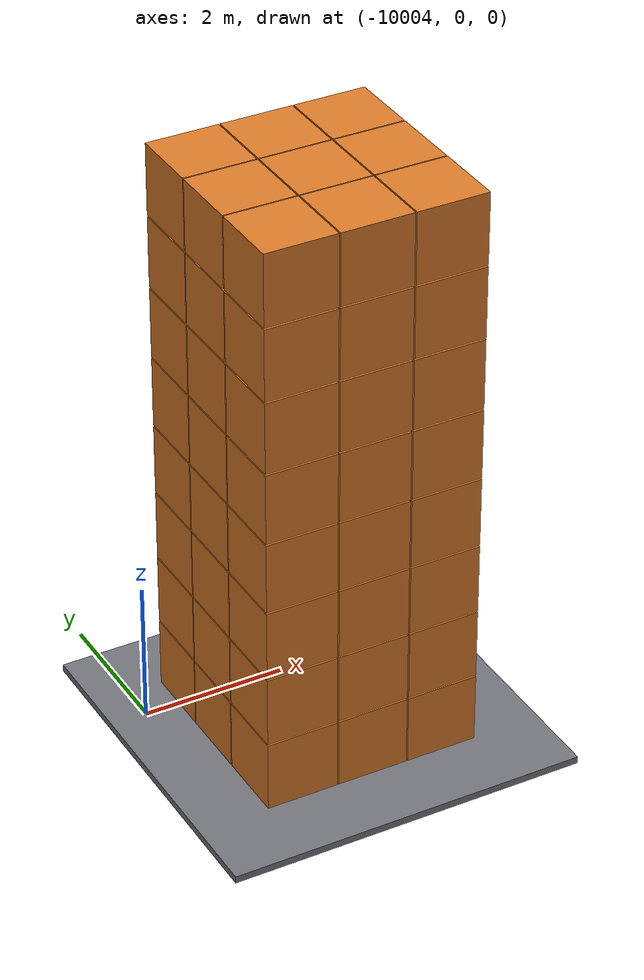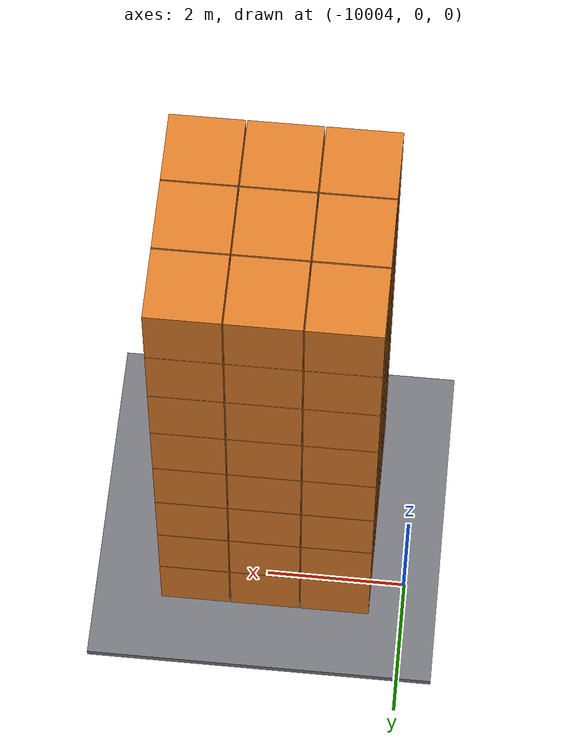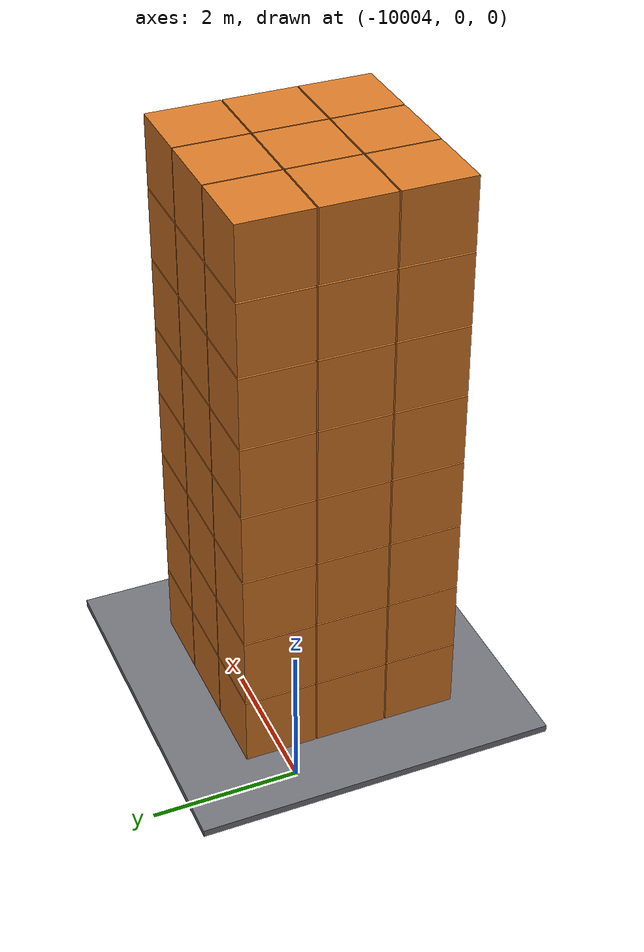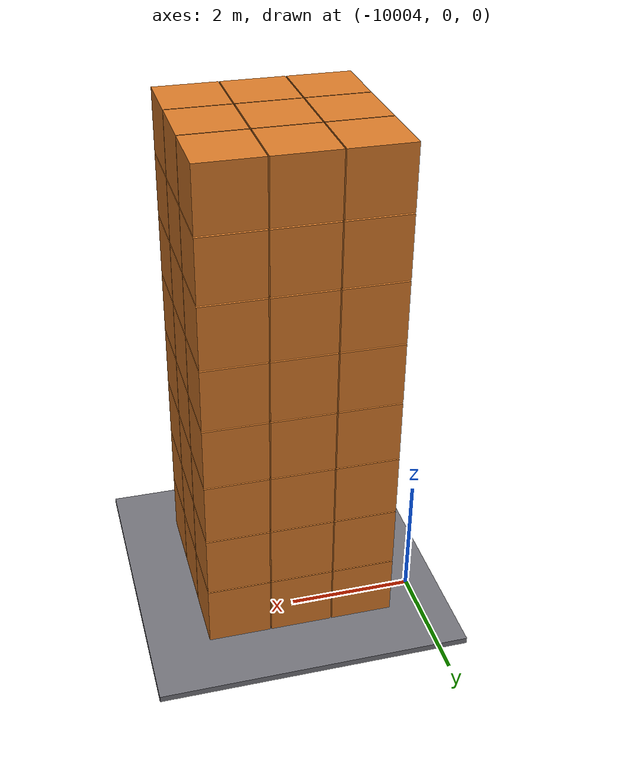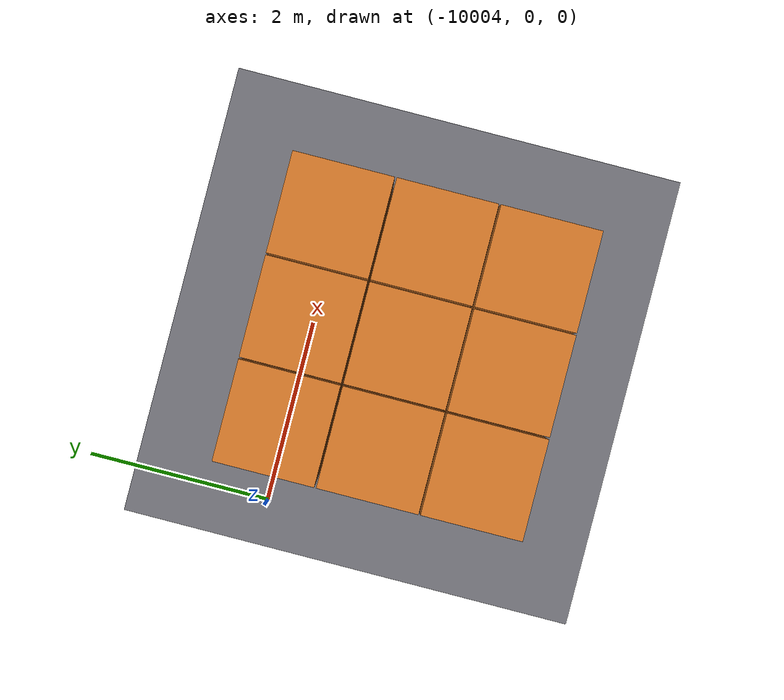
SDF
<sdf version="1.9">
 <world name="baylands_thunder">
  <physics type="ode">
   <max_step_size>0.004</max_step_size>
   <real_time_factor>1.0</real_time_factor>
   <real_time_update_rate>250</real_time_update_rate>
  </physics>
  <gravity>0 0 -9.8</gravity>
  <magnetic_field>6e-06 2.3e-05 -4.2e-05</magnetic_field>
  <atmosphere type="adiabatic"/>
  <scene>
   <ambient>0.8 0.5 1</ambient>
   <grid>false</grid>
   <sky><clouds>true</clouds></sky>
   <shadows>1</shadows>
  </scene>
  <light name="sunUTC" type="directional">
   <pose>0 0 500 0 -0 0</pose>
   <cast_shadows>false</cast_shadows>
   <intensity>1</intensity>
   <direction>0.001 0.625 -0.78</direction>
   <diffuse>0.904 0.904 0.904 1</diffuse>
   <specular>0.271 0.271 0.271 1</specular>
   <attenuation><range>2000</range><linear>0</linear><constant>1</constant><quadratic>0</quadratic></attenuation>
  </light>
  <model name="box_stack_pad">
   <static>true</static>
   <pose>-10002.000 -1 -0.05 0 0 0</pose>
   <link name="link">
    <collision name="collision"><geometry><box><size>5 5 0.1</size></box></geometry></collision>
    <visual name="visual">
     <geometry><box><size>5 5 0.1</size></box></geometry>
     <material><ambient>0.35 0.35 0.38 1</ambient><diffuse>0.45 0.45 0.48 1</diffuse></material>
    </visual>
   </link>
  </model>
  <include>
   <uri>model://collapse_box</uri>
   <name>box_0_0_0</name>
   <pose>-10003.020 -2.020 0.510 0 0 0</pose>
  </include>
  <include>
   <uri>model://collapse_box</uri>
   <name>box_1_0_0</name>
   <pose>-10002.000 -2.020 0.510 0 0 0</pose>
  </include>
  <include>
   <uri>model://collapse_box</uri>
   <name>box_2_0_0</name>
   <pose>-10000.980 -2.020 0.510 0 0 0</pose>
  </include>
  <include>
   <uri>model://collapse_box</uri>
   <name>box_0_1_0</name>
   <pose>-10003.020 -1.000 0.510 0 0 0</pose>
  </include>
  <include>
   <uri>model://collapse_box</uri>
   <name>box_1_1_0</name>
   <pose>-10002.000 -1.000 0.510 0 0 0</pose>
  </include>
  <include>
   <uri>model://collapse_box</uri>
   <name>box_2_1_0</name>
   <pose>-10000.980 -1.000 0.510 0 0 0</pose>
  </include>
  <include>
   <uri>model://collapse_box</uri>
   <name>box_0_2_0</name>
   <pose>-10003.020 0.020 0.510 0 0 0</pose>
  </include>
  <include>
   <uri>model://collapse_box</uri>
   <name>box_1_2_0</name>
   <pose>-10002.000 0.020 0.510 0 0 0</pose>
  </include>
  <include>
   <uri>model://collapse_box</uri>
   <name>box_2_2_0</name>
   <pose>-10000.980 0.020 0.510 0 0 0</pose>
  </include>
  <include>
   <uri>model://collapse_box</uri>
   <name>box_0_0_1</name>
   <pose>-10003.020 -2.020 1.530 0 0 0</pose>
  </include>
  <include>
   <uri>model://collapse_box</uri>
   <name>box_1_0_1</name>
   <pose>-10002.000 -2.020 1.530 0 0 0</pose>
  </include>
  <include>
   <uri>model://collapse_box</uri>
   <name>box_2_0_1</name>
   <pose>-10000.980 -2.020 1.530 0 0 0</pose>
  </include>
  <include>
   <uri>model://collapse_box</uri>
   <name>box_0_1_1</name>
   <pose>-10003.020 -1.000 1.530 0 0 0</pose>
  </include>
  <include>
   <uri>model://collapse_box</uri>
   <name>box_1_1_1</name>
   <pose>-10002.000 -1.000 1.530 0 0 0</pose>
  </include>
  <include>
   <uri>model://collapse_box</uri>
   <name>box_2_1_1</name>
   <pose>-10000.980 -1.000 1.530 0 0 0</pose>
  </include>
  <include>
   <uri>model://collapse_box</uri>
   <name>box_0_2_1</name>
   <pose>-10003.020 0.020 1.530 0 0 0</pose>
  </include>
  <include>
   <uri>model://collapse_box</uri>
   <name>box_1_2_1</name>
   <pose>-10002.000 0.020 1.530 0 0 0</pose>
  </include>
  <include>
   <uri>model://collapse_box</uri>
   <name>box_2_2_1</name>
   <pose>-10000.980 0.020 1.530 0 0 0</pose>
  </include>
  <include>
   <uri>model://collapse_box</uri>
   <name>box_0_0_2</name>
   <pose>-10003.020 -2.020 2.550 0 0 0</pose>
  </include>
  <include>
   <uri>model://collapse_box</uri>
   <name>box_1_0_2</name>
   <pose>-10002.000 -2.020 2.550 0 0 0</pose>
  </include>
  <include>
   <uri>model://collapse_box</uri>
   <name>box_2_0_2</name>
   <pose>-10000.980 -2.020 2.550 0 0 0</pose>
  </include>
  <include>
   <uri>model://collapse_box</uri>
   <name>box_0_1_2</name>
   <pose>-10003.020 -1.000 2.550 0 0 0</pose>
  </include>
  <include>
   <uri>model://collapse_box</uri>
   <name>box_1_1_2</name>
   <pose>-10002.000 -1.000 2.550 0 0 0</pose>
  </include>
  <include>
   <uri>model://collapse_box</uri>
   <name>box_2_1_2</name>
   <pose>-10000.980 -1.000 2.550 0 0 0</pose>
  </include>
  <include>
   <uri>model://collapse_box</uri>
   <name>box_0_2_2</name>
   <pose>-10003.020 0.020 2.550 0 0 0</pose>
  </include>
  <include>
   <uri>model://collapse_box</uri>
   <name>box_1_2_2</name>
   <pose>-10002.000 0.020 2.550 0 0 0</pose>
  </include>
  <include>
   <uri>model://collapse_box</uri>
   <name>box_2_2_2</name>
   <pose>-10000.980 0.020 2.550 0 0 0</pose>
  </include>
  <include>
   <uri>model://collapse_box</uri>
   <name>box_0_0_3</name>
   <pose>-10003.020 -2.020 3.570 0 0 0</pose>
  </include>
  <include>
   <uri>model://collapse_box</uri>
   <name>box_1_0_3</name>
   <pose>-10002.000 -2.020 3.570 0 0 0</pose>
  </include>
  <include>
   <uri>model://collapse_box</uri>
   <name>box_2_0_3</name>
   <pose>-10000.980 -2.020 3.570 0 0 0</pose>
  </include>
  <include>
   <uri>model://collapse_box</uri>
   <name>box_0_1_3</name>
   <pose>-10003.020 -1.000 3.570 0 0 0</pose>
  </include>
  <include>
   <uri>model://collapse_box</uri>
   <name>box_1_1_3</name>
   <pose>-10002.000 -1.000 3.570 0 0 0</pose>
  </include>
  <include>
   <uri>model://collapse_box</uri>
   <name>box_2_1_3</name>
   <pose>-10000.980 -1.000 3.570 0 0 0</pose>
  </include>
  <include>
   <uri>model://collapse_box</uri>
   <name>box_0_2_3</name>
   <pose>-10003.020 0.020 3.570 0 0 0</pose>
  </include>
  <include>
   <uri>model://collapse_box</uri>
   <name>box_1_2_3</name>
   <pose>-10002.000 0.020 3.570 0 0 0</pose>
  </include>
  <include>
   <uri>model://collapse_box</uri>
   <name>box_2_2_3</name>
   <pose>-10000.980 0.020 3.570 0 0 0</pose>
  </include>
  <include>
   <uri>model://collapse_box</uri>
   <name>box_0_0_4</name>
   <pose>-10003.020 -2.020 4.590 0 0 0</pose>
  </include>
  <include>
   <uri>model://collapse_box</uri>
   <name>box_1_0_4</name>
   <pose>-10002.000 -2.020 4.590 0 0 0</pose>
  </include>
  <include>
   <uri>model://collapse_box</uri>
   <name>box_2_0_4</name>
   <pose>-10000.980 -2.020 4.590 0 0 0</pose>
  </include>
  <include>
   <uri>model://collapse_box</uri>
   <name>box_0_1_4</name>
   <pose>-10003.020 -1.000 4.590 0 0 0</pose>
  </include>
  <include>
   <uri>model://collapse_box</uri>
   <name>box_1_1_4</name>
   <pose>-10002.000 -1.000 4.590 0 0 0</pose>
  </include>
  <include>
   <uri>model://collapse_box</uri>
   <name>box_2_1_4</name>
   <pose>-10000.980 -1.000 4.590 0 0 0</pose>
  </include>
  <include>
   <uri>model://collapse_box</uri>
   <name>box_0_2_4</name>
   <pose>-10003.020 0.020 4.590 0 0 0</pose>
  </include>
  <include>
   <uri>model://collapse_box</uri>
   <name>box_1_2_4</name>
   <pose>-10002.000 0.020 4.590 0 0 0</pose>
  </include>
  <include>
   <uri>model://collapse_box</uri>
   <name>box_2_2_4</name>
   <pose>-10000.980 0.020 4.590 0 0 0</pose>
  </include>
  <include>
   <uri>model://collapse_box</uri>
   <name>box_0_0_5</name>
   <pose>-10003.020 -2.020 5.610 0 0 0</pose>
  </include>
  <include>
   <uri>model://collapse_box</uri>
   <name>box_1_0_5</name>
   <pose>-10002.000 -2.020 5.610 0 0 0</pose>
  </include>
  <include>
   <uri>model://collapse_box</uri>
   <name>box_2_0_5</name>
   <pose>-10000.980 -2.020 5.610 0 0 0</pose>
  </include>
  <include>
   <uri>model://collapse_box</uri>
   <name>box_0_1_5</name>
   <pose>-10003.020 -1.000 5.610 0 0 0</pose>
  </include>
  <include>
   <uri>model://collapse_box</uri>
   <name>box_1_1_5</name>
   <pose>-10002.000 -1.000 5.610 0 0 0</pose>
  </include>
  <include>
   <uri>model://collapse_box</uri>
   <name>box_2_1_5</name>
   <pose>-10000.980 -1.000 5.610 0 0 0</pose>
  </include>
  <include>
   <uri>model://collapse_box</uri>
   <name>box_0_2_5</name>
   <pose>-10003.020 0.020 5.610 0 0 0</pose>
  </include>
  <include>
   <uri>model://collapse_box</uri>
   <name>box_1_2_5</name>
   <pose>-10002.000 0.020 5.610 0 0 0</pose>
  </include>
  <include>
   <uri>model://collapse_box</uri>
   <name>box_2_2_5</name>
   <pose>-10000.980 0.020 5.610 0 0 0</pose>
  </include>
  <include>
   <uri>model://collapse_box</uri>
   <name>box_0_0_6</name>
   <pose>-10003.020 -2.020 6.630 0 0 0</pose>
  </include>
  <include>
   <uri>model://collapse_box</uri>
   <name>box_1_0_6</name>
   <pose>-10002.000 -2.020 6.630 0 0 0</pose>
  </include>
  <include>
   <uri>model://collapse_box</uri>
   <name>box_2_0_6</name>
   <pose>-10000.980 -2.020 6.630 0 0 0</pose>
  </include>
  <include>
   <uri>model://collapse_box</uri>
   <name>box_0_1_6</name>
   <pose>-10003.020 -1.000 6.630 0 0 0</pose>
  </include>
  <include>
   <uri>model://collapse_box</uri>
   <name>box_1_1_6</name>
   <pose>-10002.000 -1.000 6.630 0 0 0</pose>
  </include>
  <include>
   <uri>model://collapse_box</uri>
   <name>box_2_1_6</name>
   <pose>-10000.980 -1.000 6.630 0 0 0</pose>
  </include>
  <include>
   <uri>model://collapse_box</uri>
   <name>box_0_2_6</name>
   <pose>-10003.020 0.020 6.630 0 0 0</pose>
  </include>
  <include>
   <uri>model://collapse_box</uri>
   <name>box_1_2_6</name>
   <pose>-10002.000 0.020 6.630 0 0 0</pose>
  </include>
  <include>
   <uri>model://collapse_box</uri>
   <name>box_2_2_6</name>
   <pose>-10000.980 0.020 6.630 0 0 0</pose>
  </include>
  <include>
   <uri>model://collapse_box</uri>
   <name>box_0_0_7</name>
   <pose>-10003.020 -2.020 7.650 0 0 0</pose>
  </include>
  <include>
   <uri>model://collapse_box</uri>
   <name>box_1_0_7</name>
   <pose>-10002.000 -2.020 7.650 0 0 0</pose>
  </include>
  <include>
   <uri>model://collapse_box</uri>
   <name>box_2_0_7</name>
   <pose>-10000.980 -2.020 7.650 0 0 0</pose>
  </include>
  <include>
   <uri>model://collapse_box</uri>
   <name>box_0_1_7</name>
   <pose>-10003.020 -1.000 7.650 0 0 0</pose>
  </include>
  <include>
   <uri>model://collapse_box</uri>
   <name>box_1_1_7</name>
   <pose>-10002.000 -1.000 7.650 0 0 0</pose>
  </include>
  <include>
   <uri>model://collapse_box</uri>
   <name>box_2_1_7</name>
   <pose>-10000.980 -1.000 7.650 0 0 0</pose>
  </include>
  <include>
   <uri>model://collapse_box</uri>
   <name>box_0_2_7</name>
   <pose>-10003.020 0.020 7.650 0 0 0</pose>
  </include>
  <include>
   <uri>model://collapse_box</uri>
   <name>box_1_2_7</name>
   <pose>-10002.000 0.020 7.650 0 0 0</pose>
  </include>
  <include>
   <uri>model://collapse_box</uri>
   <name>box_2_2_7</name>
   <pose>-10000.980 0.020 7.650 0 0 0</pose>
  </include>
  <model name="catapult_launcher">
   <static>true</static>
   <pose>-4.18 -1 1.41 0 -0.2094 3.14159</pose>
   <link name="rail">
    <collision name="collision">
     <geometry><box><size>11.0 1.2 0.20</size></box></geometry>
     <surface><friction><ode><mu>0.60</mu><mu2>0.60</mu2></ode></friction></surface>
    </collision>
    <visual name="visual">
     <geometry><box><size>11.0 1.2 0.20</size></box></geometry>
     <material><ambient>0.25 0.28 0.32 1</ambient><diffuse>0.35 0.38 0.42 1</diffuse></material>
    </visual>
   </link>
  </model>
  <model name="catapult_chock">
   <static>true</static>
   <pose>1.14 -1 0.48 0 -0.2094 3.14159</pose>
   <link name="block">
    <collision name="collision"><geometry><box><size>0.20 1.00 0.25</size></box></geometry></collision>
    <visual name="visual">
     <geometry><box><size>0.20 1.00 0.25</size></box></geometry>
     <material><ambient>0.45 0.22 0.12 1</ambient><diffuse>0.55 0.28 0.16 1</diffuse></material>
    </visual>
   </link>
  </model>
  <model name="catapult_cradle">
   <static>true</static>
   <pose>0.40 -1 0.48 0 -0.2094 3.14159</pose>
   <link name="pad">
    <collision name="collision">
     <geometry><box><size>1.60 0.90 0.12</size></box></geometry>
     <surface><friction><ode><mu>0.60</mu><mu2>0.60</mu2></ode></friction></surface>
    </collision>
    <visual name="visual">
     <geometry><box><size>1.60 0.90 0.12</size></box></geometry>
     <material><ambient>0.22 0.24 0.28 1</ambient><diffuse>0.32 0.34 0.38 1</diffuse></material>
    </visual>
   </link>
  </model>
  <model name="catapult_base">
   <static>true</static>
   <pose>0.80 -1 0.10 0 0 0</pose>
   <link name="link">
    <collision name="collision"><geometry><box><size>1.60 1.00 0.56</size></box></geometry></collision>
    <visual name="visual">
     <geometry><box><size>1.60 1.00 0.56</size></box></geometry>
     <material><ambient>0.40 0.32 0.18 1</ambient><diffuse>0.52 0.40 0.22 1</diffuse></material>
    </visual>
   </link>
  </model>
  <spherical_coordinates>
   <surface_model>EARTH_WGS84</surface_model>
   <world_frame_orientation>ENU</world_frame_orientation>
   <latitude_deg>37.412173071650805</latitude_deg>
   <longitude_deg>-121.998878727967</longitude_deg>
   <elevation>38</elevation>
  </spherical_coordinates>
 </world>
</sdf>

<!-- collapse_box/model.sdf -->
<sdf version="1.9">
  <model name="collapse_box">
    <static>false</static>
    <link name="link">
      <inertial>
        <mass>2.0</mass>
        <inertia>
          <!-- cube I = m * s^2 / 6 -->
          <ixx>0.333333</ixx>
          <ixy>0</ixy>
          <ixz>0</ixz>
          <iyy>0.333333</iyy>
          <iyz>0</iyz>
          <izz>0.333333</izz>
        </inertia>
      </inertial>
      <collision name="collision">
        <geometry>
          <box>
            <size>1 1 1</size>
          </box>
        </geometry>
        <surface>
          <friction>
            <ode>
              <mu>0.7</mu>
              <mu2>0.7</mu2>
            </ode>
          </friction>
          <bounce>
            <restitution_coefficient>0.05</restitution_coefficient>
          </bounce>
          <contact>
            <ode>
              <min_depth>0.001</min_depth>
            </ode>
          </contact>
        </surface>
      </collision>
      <visual name="visual">
        <geometry>
          <box>
            <size>1 1 1</size>
          </box>
        </geometry>
        <material>
          <ambient>0.72 0.38 0.12 1</ambient>
          <diffuse>0.85 0.48 0.16 1</diffuse>
          <specular>0.2 0.2 0.2 1</specular>
        </material>
      </visual>
    </link>
  </model>
</sdf>
